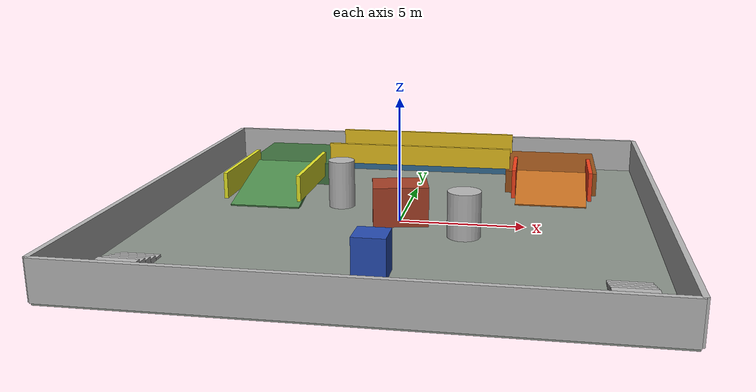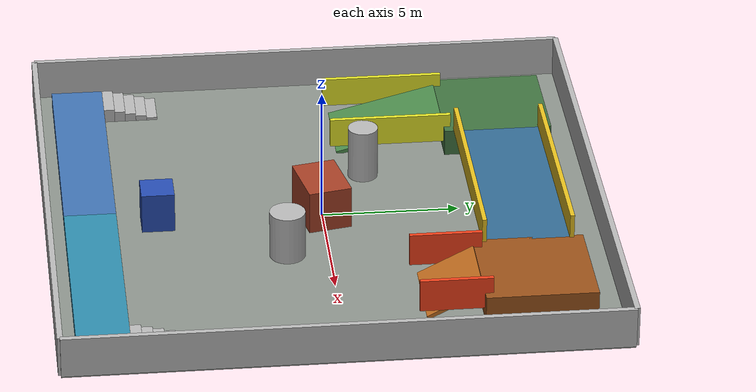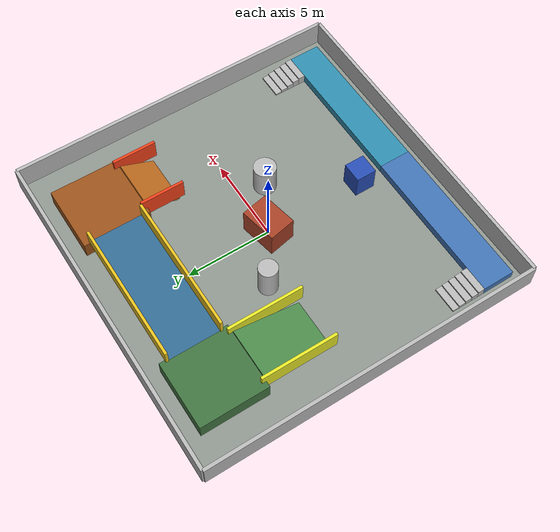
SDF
<?xml version="1.0"?>
<sdf version="1.9">
  <world name="scan_demo">
    <plugin filename="gz-sim-physics-system" name="gz::sim::systems::Physics"/>
    <plugin filename="gz-sim-user-commands-system" name="gz::sim::systems::UserCommands"/>
    <plugin filename="gz-sim-scene-broadcaster-system" name="gz::sim::systems::SceneBroadcaster"/>
    <plugin filename="gz-sim-sensors-system" name="gz::sim::systems::Sensors">
      <render_engine>ogre2</render_engine>
    </plugin>
    <gravity>0 0 -9.81</gravity>
    <physics name="1ms" type="ignored">
      <max_step_size>0.002</max_step_size>
      <real_time_factor>1.0</real_time_factor>
    </physics>
    <light name="sun" type="directional">
      <cast_shadows>true</cast_shadows><pose>0 0 10 0 0 0</pose>
      <diffuse>0.8 0.8 0.8 1</diffuse><specular>0.2 0.2 0.2 1</specular>
      <direction>-0.5 0.1 -0.9</direction>
    </light>

    <model name="ground"><static>true</static><link name="link">
      <collision name="collision"><geometry><box><size>20 20 0.1</size></box></geometry></collision>
      <visual name="visual"><geometry><box><size>20 20 0.1</size></box></geometry>
        <material><ambient>0.55 0.58 0.55 1</ambient><diffuse>0.55 0.58 0.55 1</diffuse></material></visual>
      <pose>0 0 -0.05 0 0 0</pose>
    </link></model>

    <model name="north_wall"><static>true</static><pose>0 10 0.75 0 0 0</pose><link name="link">
      <collision name="collision"><geometry><box><size>20 0.2 1.5</size></box></geometry></collision>
      <visual name="visual"><geometry><box><size>20 0.2 1.5</size></box></geometry></visual>
    </link></model>
    <model name="south_wall"><static>true</static><pose>0 -10 0.75 0 0 0</pose><link name="link">
      <collision name="collision"><geometry><box><size>20 0.2 1.5</size></box></geometry></collision>
      <visual name="visual"><geometry><box><size>20 0.2 1.5</size></box></geometry></visual>
    </link></model>
    <model name="east_wall"><static>true</static><pose>10 0 0.75 0 0 0</pose><link name="link">
      <collision name="collision"><geometry><box><size>0.2 20 1.5</size></box></geometry></collision>
      <visual name="visual"><geometry><box><size>0.2 20 1.5</size></box></geometry></visual>
    </link></model>
    <model name="west_wall"><static>true</static><pose>-10 0 0.75 0 0 0</pose><link name="link">
      <collision name="collision"><geometry><box><size>0.2 20 1.5</size></box></geometry></collision>
      <visual name="visual"><geometry><box><size>0.2 20 1.5</size></box></geometry></visual>
    </link></model>

    <model name="center_block"><static>true</static><pose>0 0 0.8 0 0 0.2</pose><link name="link">
      <collision name="collision"><geometry><box><size>2.2 1.6 1.6</size></box></geometry></collision>
      <visual name="visual"><geometry><box><size>2.2 1.6 1.6</size></box></geometry>
        <material><ambient>0.65 0.25 0.15 1</ambient><diffuse>0.65 0.25 0.15 1</diffuse></material></visual>
    </link></model>
    <model name="center_column_a"><static>true</static><pose>-2.8 1.8 1.0 0 0 0</pose><link name="link">
      <collision name="collision"><geometry><cylinder><radius>0.55</radius><length>2</length></cylinder></geometry></collision>
      <visual name="visual"><geometry><cylinder><radius>0.55</radius><length>2</length></cylinder></geometry></visual>
    </link></model>
    <model name="center_column_b"><static>true</static><pose>2.7 -1.5 0.9 0 0 0</pose><link name="link">
      <collision name="collision"><geometry><cylinder><radius>0.65</radius><length>1.8</length></cylinder></geometry></collision>
      <visual name="visual"><geometry><cylinder><radius>0.65</radius><length>1.8</length></cylinder></geometry></visual>
    </link></model>
    <model name="route_obstacle"><static>true</static><pose>0 -6 0.75 0 0 0</pose><link name="link">
      <collision name="collision"><geometry><box><size>1.2 1.2 1.5</size></box></geometry></collision>
      <visual name="visual"><geometry><box><size>1.2 1.2 1.5</size></box></geometry>
        <material><ambient>0.15 0.3 0.7 1</ambient><diffuse>0.15 0.3 0.7 1</diffuse></material></visual>
    </link></model>

    <!-- 4 m run, 1 m rise (14 degree) ramp leading to a 4 x 4 m platform. -->
    <model name="training_ramp"><static>true</static><pose>-6 3 0.5 0.244979 0 0</pose><link name="link">
      <collision name="collision"><geometry><box><size>3.0 4.123 0.14</size></box></geometry></collision>
      <visual name="visual"><geometry><box><size>3.0 4.123 0.14</size></box></geometry>
        <material><ambient>0.30 0.55 0.30 1</ambient><diffuse>0.30 0.55 0.30 1</diffuse></material></visual>
    </link></model>
    <model name="gentle_ramp_left_guard"><static>true</static><pose>-7.58 3 0.95 0 0 0</pose><link name="link">
      <collision name="collision"><geometry><box><size>0.16 4.5 1.1</size></box></geometry></collision>
      <visual name="visual"><geometry><box><size>0.16 4.5 1.1</size></box></geometry>
        <material><ambient>0.9 0.9 0.15 1</ambient><diffuse>0.9 0.9 0.15 1</diffuse></material></visual>
    </link></model>
    <model name="gentle_ramp_right_guard"><static>true</static><pose>-4.42 3 0.95 0 0 0</pose><link name="link">
      <collision name="collision"><geometry><box><size>0.16 4.5 1.1</size></box></geometry></collision>
      <visual name="visual"><geometry><box><size>0.16 4.5 1.1</size></box></geometry>
        <material><ambient>0.9 0.9 0.15 1</ambient><diffuse>0.9 0.9 0.15 1</diffuse></material></visual>
    </link></model>
    <model name="training_platform"><static>true</static><pose>-6 7 0.5 0 0 0</pose><link name="link">
      <collision name="collision"><geometry><box><size>4.0 4.0 1.0</size></box></geometry></collision>
      <visual name="visual"><geometry><box><size>4.0 4.0 1.0</size></box></geometry>
        <material><ambient>0.25 0.45 0.25 1</ambient><diffuse>0.25 0.45 0.25 1</diffuse></material></visual>
    </link></model>

    <!-- 2 m run, 1 m rise (26.6 degree) ramp and the second platform. -->
    <model name="steep_training_ramp"><static>true</static><pose>6 4 0.5 0.463648 0 0</pose><link name="link">
      <collision name="collision"><geometry><box><size>3.0 2.236 0.14</size></box></geometry></collision>
      <visual name="visual"><geometry><box><size>3.0 2.236 0.14</size></box></geometry>
        <material><ambient>0.75 0.42 0.12 1</ambient><diffuse>0.75 0.42 0.12 1</diffuse></material></visual>
    </link></model>
    <model name="steep_ramp_left_guard"><static>true</static><pose>4.42 4 1.0 0 0 0</pose><link name="link">
      <collision name="collision"><geometry><box><size>0.16 2.6 1.2</size></box></geometry></collision>
      <visual name="visual"><geometry><box><size>0.16 2.6 1.2</size></box></geometry>
        <material><ambient>0.95 0.25 0.1 1</ambient><diffuse>0.95 0.25 0.1 1</diffuse></material></visual>
    </link></model>
    <model name="steep_ramp_right_guard"><static>true</static><pose>7.58 4 1.0 0 0 0</pose><link name="link">
      <collision name="collision"><geometry><box><size>0.16 2.6 1.2</size></box></geometry></collision>
      <visual name="visual"><geometry><box><size>0.16 2.6 1.2</size></box></geometry>
        <material><ambient>0.95 0.25 0.1 1</ambient><diffuse>0.95 0.25 0.1 1</diffuse></material></visual>
    </link></model>
    <model name="steep_training_platform"><static>true</static><pose>6 7 0.5 0 0 0</pose><link name="link">
      <collision name="collision"><geometry><box><size>4.0 4.0 1.0</size></box></geometry></collision>
      <visual name="visual"><geometry><box><size>4.0 4.0 1.0</size></box></geometry>
        <material><ambient>0.60 0.32 0.10 1</ambient><diffuse>0.60 0.32 0.10 1</diffuse></material></visual>
    </link></model>

    <!-- Elevated connector between the two platform tops.  Its top surface is
         exactly z=1.0, matching both platforms, with overlapping ends so
         there is no collision seam at x=+-4. -->
    <model name="platform_connector"><static>true</static><pose>0 7 0.85 0 0 0</pose><link name="link">
      <collision name="collision"><geometry><box><size>8.2 3.0 0.3</size></box></geometry></collision>
      <visual name="visual"><geometry><box><size>8.2 3.0 0.3</size></box></geometry>
        <material><ambient>0.20 0.42 0.58 1</ambient><diffuse>0.20 0.42 0.58 1</diffuse></material></visual>
    </link></model>
    <model name="connector_south_guard"><static>true</static><pose>0 5.42 1.45 0 0 0</pose><link name="link">
      <collision name="collision"><geometry><box><size>8.3 0.16 0.9</size></box></geometry></collision>
      <visual name="visual"><geometry><box><size>8.3 0.16 0.9</size></box></geometry>
        <material><ambient>0.9 0.75 0.12 1</ambient><diffuse>0.9 0.75 0.12 1</diffuse></material></visual>
    </link></model>
    <model name="connector_north_guard"><static>true</static><pose>0 8.58 1.45 0 0 0</pose><link name="link">
      <collision name="collision"><geometry><box><size>8.3 0.16 0.9</size></box></geometry></collision>
      <visual name="visual"><geometry><box><size>8.3 0.16 0.9</size></box></geometry>
        <material><ambient>0.9 0.75 0.12 1</ambient><diffuse>0.9 0.75 0.12 1</diffuse></material></visual>
    </link></model>

    <!-- Two five-step staircases (10 cm rise, 40 cm tread) and independent
         0.5 m-high platforms. They sit near the side walls and do not alter
         the original ramp circuit. -->
    <model name="west_staircase"><static>true</static><pose>-8.5 -13 0 0 0 3.141593</pose><link name="link">
      <collision name="step_1"><pose>0 -7.3 0.05 0 0 0</pose><geometry><box><size>1.5 0.4 0.1</size></box></geometry></collision>
      <visual name="step_1_visual"><pose>0 -7.3 0.05 0 0 0</pose><geometry><box><size>1.5 0.4 0.1</size></box></geometry></visual>
      <collision name="step_2"><pose>0 -6.9 0.10 0 0 0</pose><geometry><box><size>1.5 0.4 0.2</size></box></geometry></collision>
      <visual name="step_2_visual"><pose>0 -6.9 0.10 0 0 0</pose><geometry><box><size>1.5 0.4 0.2</size></box></geometry></visual>
      <collision name="step_3"><pose>0 -6.5 0.15 0 0 0</pose><geometry><box><size>1.5 0.4 0.3</size></box></geometry></collision>
      <visual name="step_3_visual"><pose>0 -6.5 0.15 0 0 0</pose><geometry><box><size>1.5 0.4 0.3</size></box></geometry></visual>
      <collision name="step_4"><pose>0 -6.1 0.20 0 0 0</pose><geometry><box><size>1.5 0.4 0.4</size></box></geometry></collision>
      <visual name="step_4_visual"><pose>0 -6.1 0.20 0 0 0</pose><geometry><box><size>1.5 0.4 0.4</size></box></geometry></visual>
      <collision name="step_5"><pose>0 -5.7 0.25 0 0 0</pose><geometry><box><size>1.5 0.4 0.5</size></box></geometry></collision>
      <visual name="step_5_visual"><pose>0 -5.7 0.25 0 0 0</pose><geometry><box><size>1.5 0.4 0.5</size></box></geometry></visual>
    </link></model>
    <model name="east_staircase"><static>true</static><pose>8.5 -13 0 0 0 3.141593</pose><link name="link">
      <collision name="step_1"><pose>0 -7.3 0.05 0 0 0</pose><geometry><box><size>1.5 0.4 0.1</size></box></geometry></collision>
      <visual name="step_1_visual"><pose>0 -7.3 0.05 0 0 0</pose><geometry><box><size>1.5 0.4 0.1</size></box></geometry></visual>
      <collision name="step_2"><pose>0 -6.9 0.10 0 0 0</pose><geometry><box><size>1.5 0.4 0.2</size></box></geometry></collision>
      <visual name="step_2_visual"><pose>0 -6.9 0.10 0 0 0</pose><geometry><box><size>1.5 0.4 0.2</size></box></geometry></visual>
      <collision name="step_3"><pose>0 -6.5 0.15 0 0 0</pose><geometry><box><size>1.5 0.4 0.3</size></box></geometry></collision>
      <visual name="step_3_visual"><pose>0 -6.5 0.15 0 0 0</pose><geometry><box><size>1.5 0.4 0.3</size></box></geometry></visual>
      <collision name="step_4"><pose>0 -6.1 0.20 0 0 0</pose><geometry><box><size>1.5 0.4 0.4</size></box></geometry></collision>
      <visual name="step_4_visual"><pose>0 -6.1 0.20 0 0 0</pose><geometry><box><size>1.5 0.4 0.4</size></box></geometry></visual>
      <collision name="step_5"><pose>0 -5.7 0.25 0 0 0</pose><geometry><box><size>1.5 0.4 0.5</size></box></geometry></collision>
      <visual name="step_5_visual"><pose>0 -5.7 0.25 0 0 0</pose><geometry><box><size>1.5 0.4 0.5</size></box></geometry></visual>
    </link></model>
    <model name="west_stair_platform"><static>true</static><pose>-4.625 -8.45 0.25 0 0 0</pose><link name="link">
      <collision name="collision"><geometry><box><size>9.25 1.9 0.5</size></box></geometry></collision>
      <visual name="visual"><geometry><box><size>9.25 1.9 0.5</size></box></geometry><material><ambient>0.25 0.45 0.7 1</ambient><diffuse>0.25 0.45 0.7 1</diffuse></material></visual>
    </link></model>
    <model name="east_stair_platform"><static>true</static><pose>4.625 -8.45 0.25 0 0 0</pose><link name="link">
      <collision name="collision"><geometry><box><size>9.25 1.9 0.5</size></box></geometry></collision>
      <visual name="visual"><geometry><box><size>9.25 1.9 0.5</size></box></geometry><material><ambient>0.18 0.55 0.68 1</ambient><diffuse>0.18 0.55 0.68 1</diffuse></material></visual>
    </link></model>
  </world>
</sdf>
